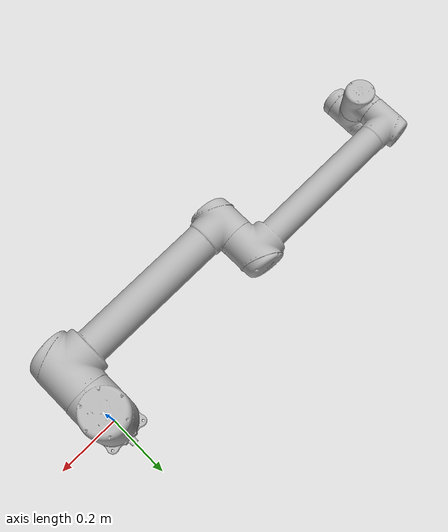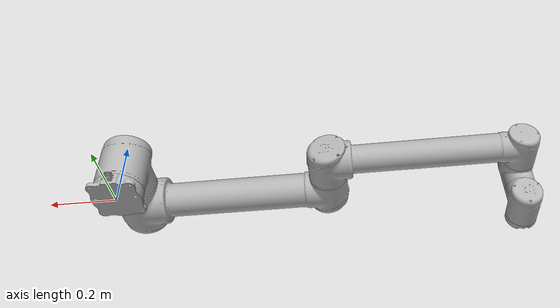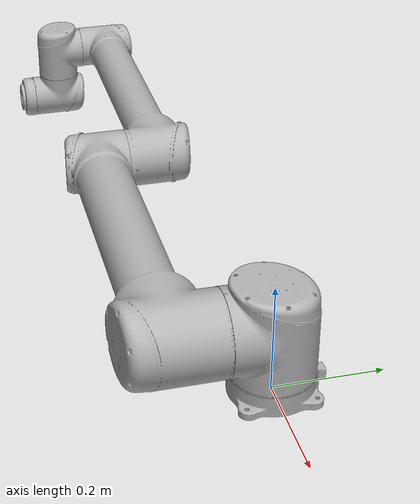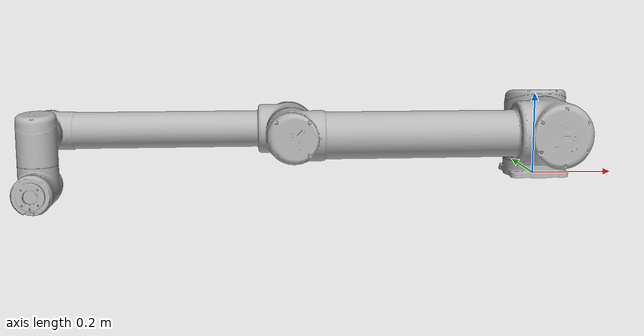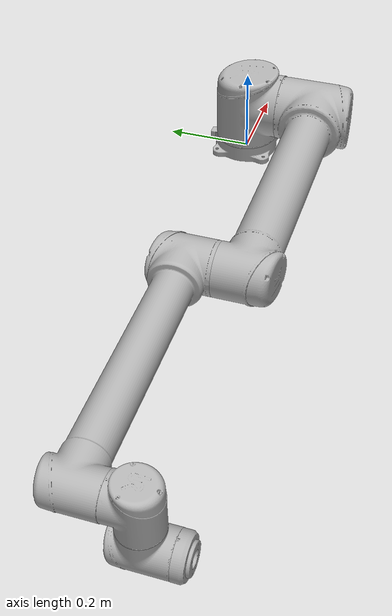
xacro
<?xml version="1.0"?>
<robot xmlns:xacro="http://www.ros.org/wiki/xacro" name="READY_UR10" >
  <!-- common stuff -->
  <xacro:include filename="$(find ur_description)/urdf/common.gazebo.xacro" />

  <!-- ur10 -->
  <xacro:include filename="$(find ur_description)/urdf/ur10.urdf.xacro" />

  <!-- arm -->
  <xacro:ur10_robot prefix="" joint_limited="true"/>
</robot>

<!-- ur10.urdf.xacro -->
<robot xmlns:xacro="http://www.ros.org/wiki/xacro">

<!--
  Author: Kelsey Hawkins
  Contributers: Jimmy Da Silva, Ajit Krisshna N L, Muhammad Asif Rana
-->

  <xacro:include filename="$(find ur_description)/urdf/ur.transmission.xacro" />
  <xacro:include filename="$(find ur_description)/urdf/ur.gazebo.xacro" />

  <property name="pi" value="3.14159265" />

  <!-- Inertia parameters -->
  <property name="base_mass" value="4.0" />  <!-- This mass might be incorrect -->
  <property name="shoulder_mass" value="7.778" />
  <property name="upper_arm_mass" value="12.93" />
  <property name="forearm_mass" value="3.87" />
  <property name="wrist_1_mass" value="1.96" />
  <property name="wrist_2_mass" value="1.96" />
  <property name="wrist_3_mass" value="0.202" />

  <property name="shoulder_cog" value="0.00008 0.00244 -0.037" />
  <property name="upper_arm_cog" value="0.00001 0.15061 0.38757" />
  <property name="forearm_cog" value="-0.00012 0.06112 0.1984" />
  <property name="wrist_1_cog" value="-0.00021 -0.00112 0.02269" />
  <property name="wrist_2_cog" value="-0.00021 0.00112 0.002269" />
  <property name="wrist_3_cog" value="0 -0.001156 -0.00149" />

  <!-- Kinematic model -->
  <!-- Properties from urcontrol.conf -->
  <property name="ur10_d1" value="0.1273" />
  <property name="ur10_a2" value="-0.612" />
  <property name="ur10_a3" value="-0.5723" />
  <property name="ur10_d4" value="0.163941" />
  <property name="ur10_d5" value="0.1157" />
  <property name="ur10_d6" value="0.0922" />

  <!-- Arbitrary offsets for shoulder/elbow joints -->
  <property name="shoulder_offset" value="0.220941" />  <!-- measured from model -->
  <property name="elbow_offset" value="-0.1719" /> <!-- measured from model -->

  <!-- link lengths used in model -->
  <property name="shoulder_height" value="${ur10_d1}" />
  <property name="upper_arm_length" value="${-ur10_a2}" />
  <property name="forearm_length" value="${-ur10_a3}" />
  <property name="wrist_1_length" value="${ur10_d4 - elbow_offset - shoulder_offset}" />
  <property name="wrist_2_length" value="${ur10_d5}" />
  <property name="wrist_3_length" value="${ur10_d6}" />

  <xacro:macro name="cylinder_inertial" params="radius length mass *origin">
    <inertial>
      <mass value="${mass}" />
      <insert_block name="origin" />
      <inertia ixx="${0.0833333 * mass * (3 * radius * radius + length * length)}" ixy="0.0" ixz="0.0"
        iyy="${0.0833333 * mass * (3 * radius * radius + length * length)}" iyz="0.0"
        izz="${0.5 * mass * radius * radius}" />
    </inertial>
  </xacro:macro>

  <xacro:macro name="ur10_robot" params="prefix joint_limited">

    <link name="${prefix}base_link" >
      <visual>
        <geometry>
          <mesh filename="package://ur_description/meshes/ur10/visual/base.dae"/>
        </geometry>
        <material name="LightGrey">
          <color rgba="0.7 0.7 0.7 1.0"/>
        </material>
      </visual>
      <collision>
        <geometry>
          <mesh filename="package://ur_description/meshes/ur10/collision/base.stl"/>
        </geometry>
      </collision>
      <xacro:cylinder_inertial radius="0.075" length="0.038" mass="${base_mass}">
        <origin xyz="0.0 0.0 0.0" rpy="0 0 0" />
      </xacro:cylinder_inertial>
    </link>

    <joint name="${prefix}shoulder_pan_joint" type="revolute">
      <parent link="${prefix}base_link" />
      <child link = "${prefix}shoulder_link" />
      <origin xyz="0.0 0.0 ${shoulder_height}" rpy="0.0 0.0 0.0" />
      <axis xyz="0 0 1" />
      <xacro:unless value="${joint_limited}">
        <limit lower="${-2.0 * pi}" upper="${2.0 * pi}" effort="330.0" velocity="2.16"/>
      </xacro:unless>
      <xacro:if value="${joint_limited}">
        <limit lower="${-pi}" upper="${pi}" effort="330.0" velocity="2.16"/>
      </xacro:if>
      <dynamics damping="0.0" friction="0.0"/>
    </joint>

    <link name="${prefix}shoulder_link">
      <visual>
        <geometry>
          <mesh filename="package://ur_description/meshes/ur10/visual/shoulder.dae"/>
        </geometry>
        <material name="LightGrey">
          <color rgba="0.7 0.7 0.7 1.0"/>
        </material>
      </visual>
      <collision>
        <geometry>
          <mesh filename="package://ur_description/meshes/ur10/collision/shoulder.stl"/>
        </geometry>
      </collision>
      <xacro:cylinder_inertial radius="0.075" length="0.178" mass="${shoulder_mass}">
        <origin xyz="0.0 0.0 0.0" rpy="0 0 0" />
      </xacro:cylinder_inertial>
    </link>

    <joint name="${prefix}shoulder_lift_joint" type="revolute">
      <parent link="${prefix}shoulder_link" />
      <child link = "${prefix}upper_arm_link" />
      <origin xyz="0.0 ${shoulder_offset} 0.0" rpy="0.0 ${pi / 2.0} 0.0" />
      <axis xyz="0 1 0" />
      <xacro:unless value="${joint_limited}">
        <limit lower="${-2.0 * pi}" upper="${2.0 * pi}" effort="330.0" velocity="2.16"/>
      </xacro:unless>
      <xacro:if value="${joint_limited}">
        <limit lower="${-pi}" upper="${pi}" effort="330.0" velocity="2.16"/>
      </xacro:if>
      <dynamics damping="0.0" friction="0.0"/>
    </joint>

    <link name="${prefix}upper_arm_link">
      <visual>
        <geometry>
          <mesh filename="package://ur_description/meshes/ur10/visual/upperarm.dae"/>
        </geometry>
        <material name="LightGrey">
          <color rgba="0.7 0.7 0.7 1.0"/>
        </material>
      </visual>
      <collision>
        <geometry>
          <mesh filename="package://ur_description/meshes/ur10/collision/upperarm.stl"/>
        </geometry>
      </collision>
      <xacro:cylinder_inertial radius="0.075" length="${-ur10_a2}" mass="${upper_arm_mass}">
        <origin xyz="0.0 0.0 ${-ur10_a2/2.0}" rpy="0 0 0" />
      </xacro:cylinder_inertial>
    </link>

    <joint name="${prefix}elbow_joint" type="revolute">
      <parent link="${prefix}upper_arm_link" />
      <child link = "${prefix}forearm_link" />
      <origin xyz="0.0 ${elbow_offset} ${upper_arm_length}" rpy="0.0 0.0 0.0" />
      <axis xyz="0 1 0" />
      <xacro:unless value="${joint_limited}">
        <limit lower="${-2.0 * pi}" upper="${2.0 * pi}" effort="150.0" velocity="3.15"/>
      </xacro:unless>
      <xacro:if value="${joint_limited}">
        <limit lower="${-pi}" upper="${pi}" effort="150.0" velocity="3.15"/>
      </xacro:if>
      <dynamics damping="0.0" friction="0.0"/>
    </joint>

    <link name="${prefix}forearm_link">
      <visual>
         <geometry>
          <mesh filename="package://ur_description/meshes/ur10/visual/forearm.dae"/>
        </geometry>
        <material name="LightGrey">
          <color rgba="0.7 0.7 0.7 1.0"/>
        </material>
      </visual>
      <collision>
        <geometry>
          <mesh filename="package://ur_description/meshes/ur10/collision/forearm.stl"/>
        </geometry>
      </collision>
      <xacro:cylinder_inertial radius="0.075" length="${-ur10_a3}" mass="${forearm_mass}">
        <origin xyz="0.0 0.0 ${-ur10_a3/2.0}" rpy="0 0 0" />
      </xacro:cylinder_inertial>
    </link>

    <joint name="${prefix}wrist_1_joint" type="revolute">
      <parent link="${prefix}forearm_link" />
      <child link = "${prefix}wrist_1_link" />
      <origin xyz="0.0 0.0 ${forearm_length}" rpy="0.0 ${pi / 2.0} 0.0" />
      <axis xyz="0 1 0" />
      <xacro:unless value="${joint_limited}">
        <limit lower="${-2.0 * pi}" upper="${2.0 * pi}" effort="54.0" velocity="3.2"/>
      </xacro:unless>
      <xacro:if value="${joint_limited}">
        <limit lower="${-pi}" upper="${pi}" effort="54.0" velocity="3.2"/>
      </xacro:if>
      <dynamics damping="0.0" friction="0.0"/>
    </joint>

    <link name="${prefix}wrist_1_link">
      <visual>
        <geometry>
          <mesh filename="package://ur_description/meshes/ur10/visual/wrist1.dae"/>
        </geometry>
        <material name="LightGrey">
          <color rgba="0.7 0.7 0.7 1.0"/>
        </material>
      </visual>
      <collision>
        <geometry>
          <mesh filename="package://ur_description/meshes/ur10/collision/wrist1.stl"/>
        </geometry>
      </collision>
      <xacro:cylinder_inertial radius="0.075" length="0.12" mass="${wrist_1_mass}">
        <origin xyz="0.0 0.0 0.0" rpy="0 0 0" />
      </xacro:cylinder_inertial>
    </link>

    <joint name="${prefix}wrist_2_joint" type="revolute">
      <parent link="${prefix}wrist_1_link" />
      <child link = "${prefix}wrist_2_link" />
      <origin xyz="0.0 ${wrist_1_length} 0.0" rpy="0.0 0.0 0.0" />
      <axis xyz="0 0 1" />
      <xacro:unless value="${joint_limited}">
        <limit lower="${-2.0 * pi}" upper="${2.0 * pi}" effort="54.0" velocity="3.2"/>
      </xacro:unless>
      <xacro:if value="${joint_limited}">
        <limit lower="${-pi}" upper="${pi}" effort="54.0" velocity="3.2"/>
      </xacro:if>
      <dynamics damping="0.0" friction="0.0"/>
    </joint>

    <link name="${prefix}wrist_2_link">
      <visual>
        <geometry>
          <mesh filename="package://ur_description/meshes/ur10/visual/wrist2.dae"/>
        </geometry>
        <material name="LightGrey">
          <color rgba="0.7 0.7 0.7 1.0"/>
        </material>
      </visual>
      <collision>
        <geometry>
          <mesh filename="package://ur_description/meshes/ur10/collision/wrist2.stl"/>
        </geometry>
      </collision>
      <xacro:cylinder_inertial radius="0.075" length="0.12" mass="${wrist_2_mass}">
        <origin xyz="0.0 0.0 0.0" rpy="0 0 0" />
      </xacro:cylinder_inertial>
    </link>

    <joint name="${prefix}wrist_3_joint" type="revolute">
      <parent link="${prefix}wrist_2_link" />
      <child link = "${prefix}wrist_3_link" />
      <origin xyz="0.0 0.0 ${wrist_2_length}" rpy="0.0 0.0 0.0" />
      <axis xyz="0 1 0" />
      <xacro:unless value="${joint_limited}">
        <limit lower="${-2.0 * pi}" upper="${2.0 * pi}" effort="54.0" velocity="3.2"/>
      </xacro:unless>
      <xacro:if value="${joint_limited}">
        <limit lower="${-pi}" upper="${pi}" effort="54.0" velocity="3.2"/>
      </xacro:if>
      <dynamics damping="0.0" friction="0.0"/>
    </joint>

    <link name="${prefix}wrist_3_link">
      <visual>
        <geometry>
          <mesh filename="package://ur_description/meshes/ur10/visual/wrist3.dae"/>
        </geometry>
        <material name="LightGrey">
          <color rgba="0.7 0.7 0.7 1.0"/>
        </material>
      </visual>
      <collision>
        <geometry>
          <mesh filename="package://ur_description/meshes/ur10/collision/wrist3.stl"/>
        </geometry>
      </collision>
      <xacro:cylinder_inertial radius="0.075" length="0.12" mass="${wrist_3_mass}">
        <origin xyz="0.0 0.0 0.0" rpy="0 0 0" />
      </xacro:cylinder_inertial>
    </link>

    <joint name="${prefix}ee_fixed_joint" type="fixed">
      <parent link="${prefix}wrist_3_link" />
      <child link = "${prefix}ee_link" />
      <origin xyz="0.0 ${wrist_3_length} 0.0" rpy="0.0 0.0 ${pi/2.0}" />
    </joint>

    <link name="${prefix}ee_link">
      <collision>
        <geometry>
          <box size="0.01 0.01 0.01"/>
        </geometry>
        <origin rpy="0 0 0" xyz="-0.01 0 0"/>
      </collision>
    </link>

    <xacro:ur_arm_transmission prefix="${prefix}" />
    <xacro:ur_arm_gazebo prefix="${prefix}" />

    <!-- ROS base_link to UR 'Base' Coordinates transform -->
    <link name="${prefix}base"/>
    <joint name="${prefix}base_link-base_fixed_joint" type="fixed">
      <!-- NOTE: this rotation is only needed as long as base_link itself is
                 not corrected wrt the real robot (ie: rotated over 180
                 degrees)
      -->
      <origin xyz="0 0 0" rpy="0 0 ${-pi}"/>
      <parent link="${prefix}base"/>
      <child link="${prefix}base_link"/>
    </joint>

    <!-- Frame coincident with all-zeros TCP on UR controller -->
    <link name="${prefix}tool0"/>
    <joint name="${prefix}wrist_3_link-tool0_fixed_joint" type="fixed">
      <origin xyz="0 ${wrist_3_length} 0" rpy="${pi/-2.0} 0 0"/>
      <parent link="${prefix}wrist_3_link"/>
      <child link="${prefix}tool0"/>
    </joint>

  </xacro:macro>
</robot>
